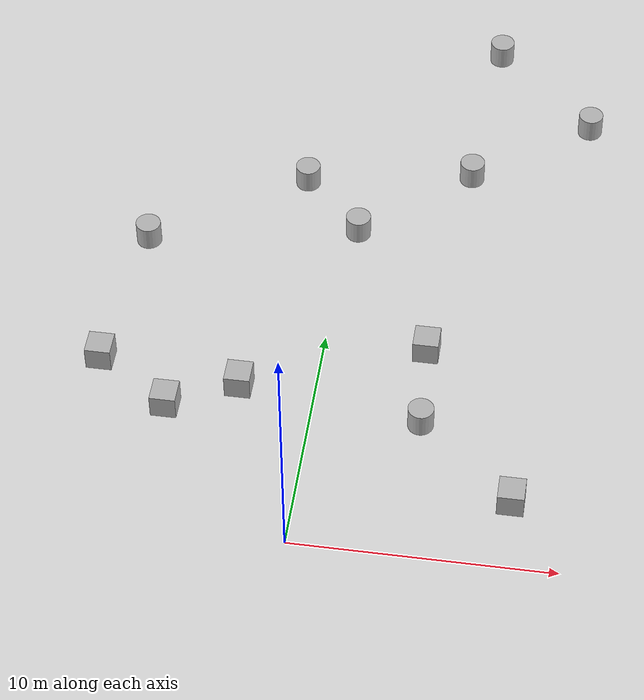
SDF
<sdf version="1.9">
 <world name="default">
  <model name="cylinder">
   <pose>4.20673 6.16578 0.5 0 -0 0</pose>
   <link name="cylinder_link">
    <inertial>
     <inertia>
      <ixx>0.14580000000000001</ixx>
      <ixy>0</ixy>
      <ixz>0</ixz>
      <iyy>0.14580000000000001</iyy>
      <iyz>0</iyz>
      <izz>0.125</izz>
     </inertia>
     <mass>1</mass>
    </inertial>
    <collision name="cylinder_collision">
     <geometry><cylinder><radius>0.5</radius><length>1</length></cylinder></geometry>
    </collision>
    <visual name="cylinder_visual">
     <geometry><cylinder><radius>0.5</radius><length>1</length></cylinder></geometry>
     <material>
      <ambient>0.3 0.3 0.3 1</ambient>
      <diffuse>0.7 0.7 0.7 1</diffuse>
      <specular>1 1 1 1</specular>
     </material>
    </visual>
   </link>
   <static>false</static>
  </model>
  <model name="box">
   <pose>3.98934 9.79536 0.5 0 -0 0</pose>
   <link name="box_link">
    <inertial>
     <inertia><ixx>0.16666</ixx><ixy>0</ixy><ixz>0</ixz><iyy>0.16666</iyy><iyz>0</iyz><izz>0.16666</izz></inertia>
     <mass>1</mass>
    </inertial>
    <collision name="box_collision"><geometry><box><size>1 1 1</size></box></geometry></collision>
    <visual name="box_visual">
     <geometry><box><size>1 1 1</size></box></geometry>
     <material>
      <ambient>0.3 0.3 0.3 1</ambient>
      <diffuse>0.7 0.7 0.7 1</diffuse>
      <specular>1 1 1 1</specular>
     </material>
    </visual>
   </link>
   <static>false</static>
  </model>
  <model name="box_2">
   <pose>-5.54918 5.70554 0.5 0 -0 0</pose>
   <link name="box_link">
    <inertial>
     <inertia><ixx>0.16666</ixx><ixy>0</ixy><ixz>0</ixz><iyy>0.16666</iyy><iyz>0</iyz><izz>0.16666</izz></inertia>
     <mass>1</mass>
    </inertial>
    <collision name="box_collision"><geometry><box><size>1 1 1</size></box></geometry></collision>
    <visual name="box_visual">
     <geometry><box><size>1 1 1</size></box></geometry>
     <material>
      <ambient>0.3 0.3 0.3 1</ambient>
      <diffuse>0.7 0.7 0.7 1</diffuse>
      <specular>1 1 1 1</specular>
     </material>
    </visual>
   </link>
   <static>false</static>
  </model>
  <model name="box_4">
   <pose>-2.92919 7.05366 0.5 0 -0 0</pose>
   <link name="box_link">
    <inertial>
     <inertia><ixx>0.16666</ixx><ixy>0</ixy><ixz>0</ixz><iyy>0.16666</iyy><iyz>0</iyz><izz>0.16666</izz></inertia>
     <mass>1</mass>
    </inertial>
    <collision name="box_collision"><geometry><box><size>1 1 1</size></box></geometry></collision>
    <visual name="box_visual">
     <geometry><box><size>1 1 1</size></box></geometry>
     <material>
      <ambient>0.3 0.3 0.3 1</ambient>
      <diffuse>0.7 0.7 0.7 1</diffuse>
      <specular>1 1 1 1</specular>
     </material>
    </visual>
   </link>
   <static>false</static>
  </model>
  <model name="box_5">
   <pose>7.9661 2.87257 0.5 0 -0 0</pose>
   <link name="box_link">
    <inertial>
     <inertia><ixx>0.16666</ixx><ixy>0</ixy><ixz>0</ixz><iyy>0.16666</iyy><iyz>0</iyz><izz>0.16666</izz></inertia>
     <mass>1</mass>
    </inertial>
    <collision name="box_collision"><geometry><box><size>1 1 1</size></box></geometry></collision>
    <visual name="box_visual">
     <geometry><box><size>1 1 1</size></box></geometry>
     <material>
      <ambient>0.3 0.3 0.3 1</ambient>
      <diffuse>0.7 0.7 0.7 1</diffuse>
      <specular>1 1 1 1</specular>
     </material>
    </visual>
   </link>
   <static>false</static>
  </model>
  <model name="box_7_18">
   <pose>-8.49059 7.71138 0.5 0 -0 0</pose>
   <link name="box_link">
    <inertial>
     <inertia><ixx>0.16666</ixx><ixy>0</ixy><ixz>0</ixz><iyy>0.16666</iyy><iyz>0</iyz><izz>0.16666</izz></inertia>
     <mass>1</mass>
    </inertial>
    <collision name="box_collision"><geometry><box><size>1 1 1</size></box></geometry></collision>
    <visual name="box_visual">
     <geometry><box><size>1 1 1</size></box></geometry>
     <material>
      <ambient>0.3 0.3 0.3 1</ambient>
      <diffuse>0.7 0.7 0.7 1</diffuse>
      <specular>1 1 1 1</specular>
     </material>
    </visual>
   </link>
   <static>false</static>
  </model>
  <model name="cylinder_1_9">
   <pose>5.19861 27.2039 0.5 0 -0 0</pose>
   <link name="cylinder_link">
    <inertial>
     <inertia>
      <ixx>0.14580000000000001</ixx>
      <ixy>0</ixy>
      <ixz>0</ixz>
      <iyy>0.14580000000000001</iyy>
      <iyz>0</iyz>
      <izz>0.125</izz>
     </inertia>
     <mass>1</mass>
    </inertial>
    <collision name="cylinder_collision">
     <geometry><cylinder><radius>0.5</radius><length>1</length></cylinder></geometry>
    </collision>
    <visual name="cylinder_visual">
     <geometry><cylinder><radius>0.5</radius><length>1</length></cylinder></geometry>
     <material>
      <ambient>0.3 0.3 0.3 1</ambient>
      <diffuse>0.7 0.7 0.7 1</diffuse>
      <specular>1 1 1 1</specular>
     </material>
    </visual>
   </link>
   <static>false</static>
  </model>
  <model name="cylinder_1_10">
   <pose>-2.01102 18.4488 0.5 0 -0 0</pose>
   <link name="cylinder_link">
    <inertial>
     <inertia>
      <ixx>0.14580000000000001</ixx>
      <ixy>0</ixy>
      <ixz>0</ixz>
      <iyy>0.14580000000000001</iyy>
      <iyz>0</iyz>
      <izz>0.125</izz>
     </inertia>
     <mass>1</mass>
    </inertial>
    <collision name="cylinder_collision">
     <geometry><cylinder><radius>0.5</radius><length>1</length></cylinder></geometry>
    </collision>
    <visual name="cylinder_visual">
     <geometry><cylinder><radius>0.5</radius><length>1</length></cylinder></geometry>
     <material>
      <ambient>0.3 0.3 0.3 1</ambient>
      <diffuse>0.7 0.7 0.7 1</diffuse>
      <specular>1 1 1 1</specular>
     </material>
    </visual>
   </link>
   <static>false</static>
  </model>
  <model name="cylinder_1_11">
   <pose>4.70402 19.6044 0.5 0 -0 0</pose>
   <link name="cylinder_link">
    <inertial>
     <inertia>
      <ixx>0.14580000000000001</ixx>
      <ixy>0</ixy>
      <ixz>0</ixz>
      <iyy>0.14580000000000001</iyy>
      <iyz>0</iyz>
      <izz>0.125</izz>
     </inertia>
     <mass>1</mass>
    </inertial>
    <collision name="cylinder_collision">
     <geometry><cylinder><radius>0.5</radius><length>1</length></cylinder></geometry>
    </collision>
    <visual name="cylinder_visual">
     <geometry><cylinder><radius>0.5</radius><length>1</length></cylinder></geometry>
     <material>
      <ambient>0.3 0.3 0.3 1</ambient>
      <diffuse>0.7 0.7 0.7 1</diffuse>
      <specular>1 1 1 1</specular>
     </material>
    </visual>
   </link>
   <static>false</static>
  </model>
  <model name="cylinder_1_13">
   <pose>9.3519 23.1416 0.5 0 -0 0</pose>
   <link name="cylinder_link">
    <inertial>
     <inertia>
      <ixx>0.14580000000000001</ixx>
      <ixy>0</ixy>
      <ixz>0</ixz>
      <iyy>0.14580000000000001</iyy>
      <iyz>0</iyz>
      <izz>0.125</izz>
     </inertia>
     <mass>1</mass>
    </inertial>
    <collision name="cylinder_collision">
     <geometry><cylinder><radius>0.5</radius><length>1</length></cylinder></geometry>
    </collision>
    <visual name="cylinder_visual">
     <geometry><cylinder><radius>0.5</radius><length>1</length></cylinder></geometry>
     <material>
      <ambient>0.3 0.3 0.3 1</ambient>
      <diffuse>0.7 0.7 0.7 1</diffuse>
      <specular>1 1 1 1</specular>
     </material>
    </visual>
   </link>
   <static>false</static>
  </model>
  <model name="cylinder_1_14">
   <pose>0.456723 15.8327 0.5 0 -0 0</pose>
   <link name="cylinder_link">
    <inertial>
     <inertia>
      <ixx>0.14580000000000001</ixx>
      <ixy>0</ixy>
      <ixz>0</ixz>
      <iyy>0.14580000000000001</iyy>
      <iyz>0</iyz>
      <izz>0.125</izz>
     </inertia>
     <mass>1</mass>
    </inertial>
    <collision name="cylinder_collision">
     <geometry><cylinder><radius>0.5</radius><length>1</length></cylinder></geometry>
    </collision>
    <visual name="cylinder_visual">
     <geometry><cylinder><radius>0.5</radius><length>1</length></cylinder></geometry>
     <material>
      <ambient>0.3 0.3 0.3 1</ambient>
      <diffuse>0.7 0.7 0.7 1</diffuse>
      <specular>1 1 1 1</specular>
     </material>
    </visual>
   </link>
   <static>false</static>
  </model>
  <model name="cylinder_1_15">
   <pose>-7.91156 14.2864 0.5 0 -0 0</pose>
   <link name="cylinder_link">
    <inertial>
     <inertia>
      <ixx>0.14580000000000001</ixx>
      <ixy>0</ixy>
      <ixz>0</ixz>
      <iyy>0.14580000000000001</iyy>
      <iyz>0</iyz>
      <izz>0.125</izz>
     </inertia>
     <mass>1</mass>
    </inertial>
    <collision name="cylinder_collision">
     <geometry><cylinder><radius>0.5</radius><length>1</length></cylinder></geometry>
    </collision>
    <visual name="cylinder_visual">
     <geometry><cylinder><radius>0.5</radius><length>1</length></cylinder></geometry>
     <material>
      <ambient>0.3 0.3 0.3 1</ambient>
      <diffuse>0.7 0.7 0.7 1</diffuse>
      <specular>1 1 1 1</specular>
     </material>
    </visual>
   </link>
   <static>false</static>
  </model>
 </world>
</sdf>
